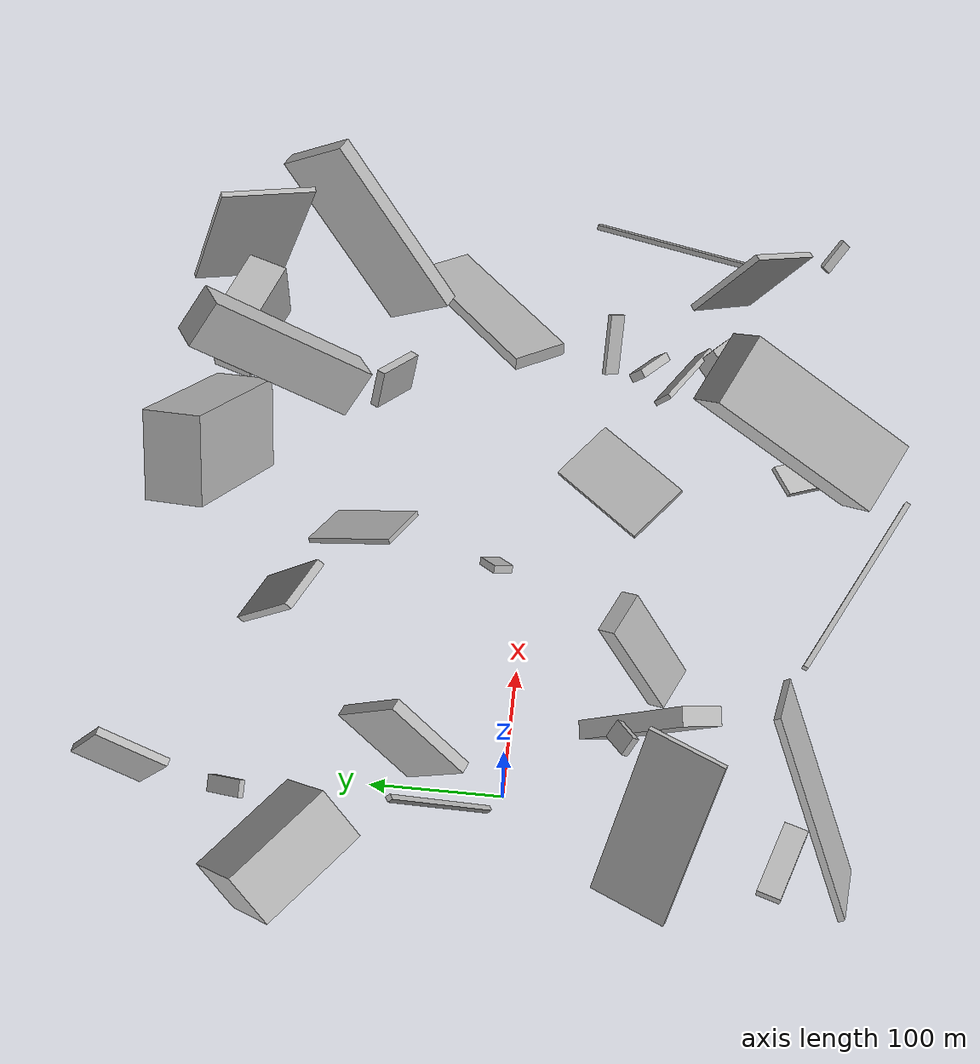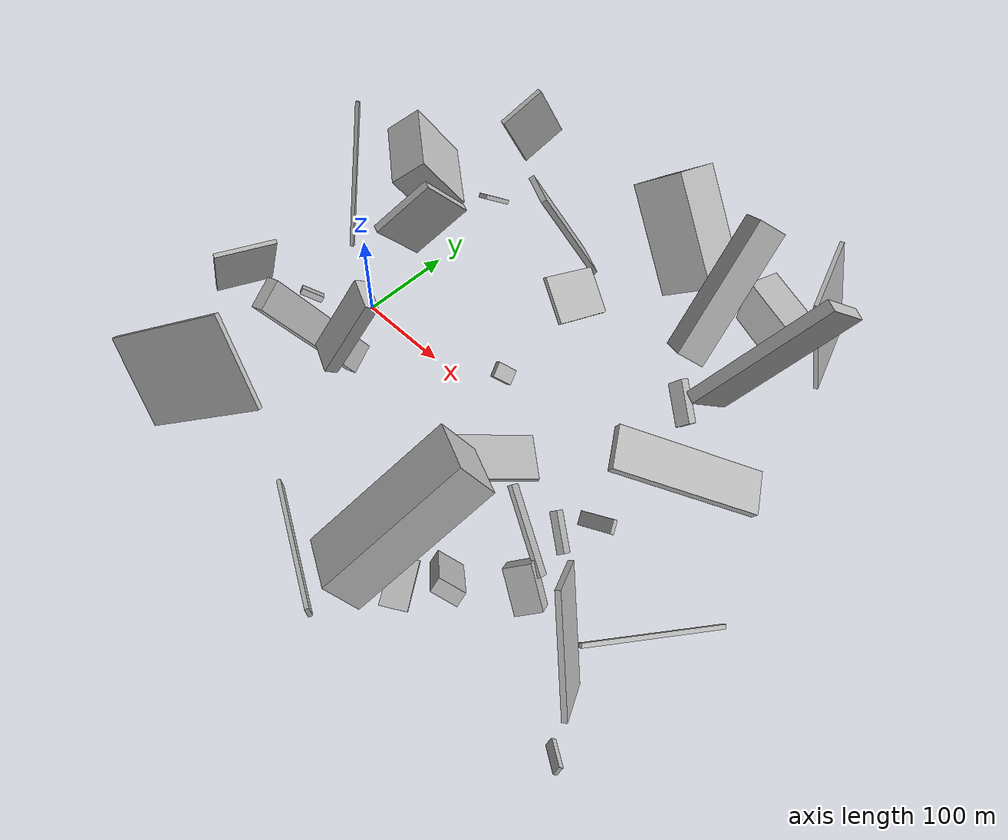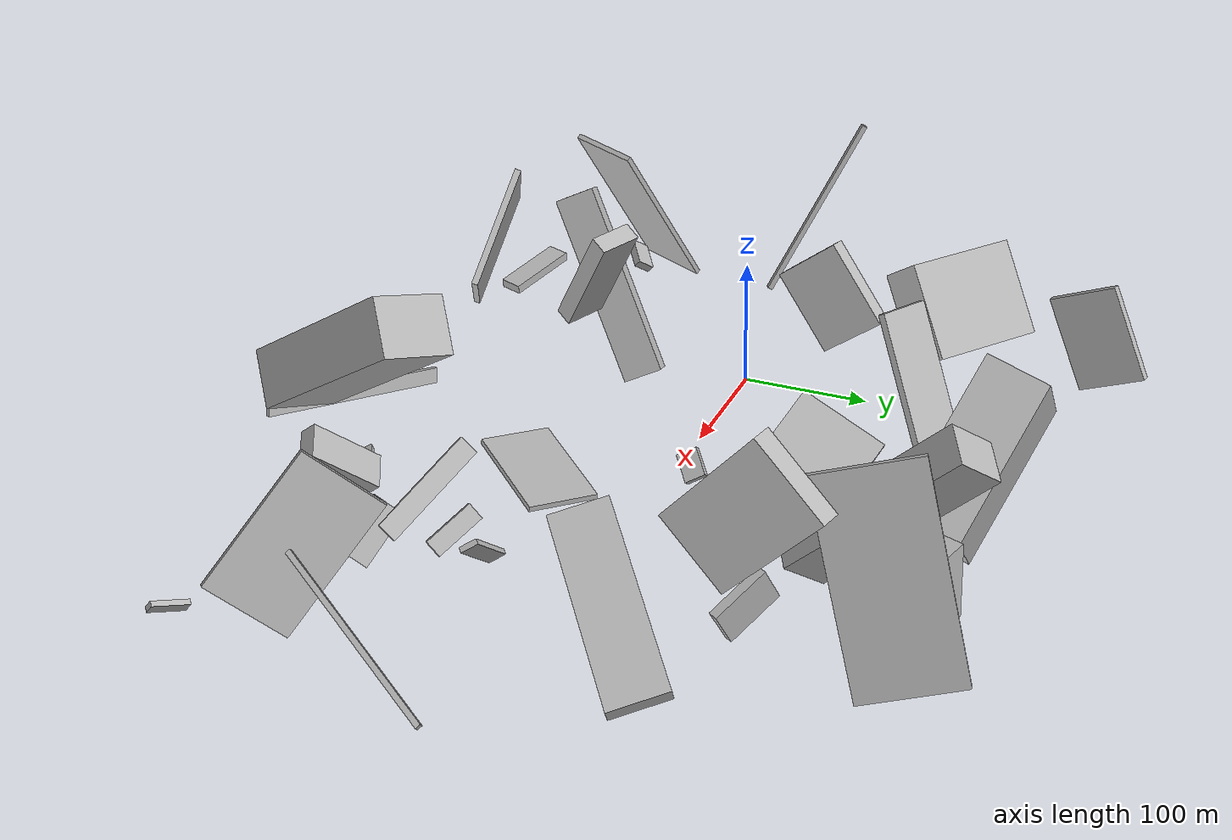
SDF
<sdf version="1.6">
 <world name="default">
  <scene>
   <sky><clouds><speed>12</speed></clouds></sky>
   <ambient>0.4 0.4 0.4 1</ambient>
   <background>0.7 0.7 0.7 1</background>
   <shadows>1</shadows>
  </scene>
  <gravity>0 0 -9.8066</gravity>
  <magnetic_field>6e-06 2.3e-05 -4.2e-05</magnetic_field>
  <physics default="0" name="default_physics" type="ode">
   <ode>
    <solver>
     <type>quick</type>
     <iters>10</iters>
     <sor>1.0</sor>
     <use_dynamic_moi_rescaling>0</use_dynamic_moi_rescaling>
    </solver>
    <constraints>
     <cfm>0</cfm>
     <erp>0.2</erp>
     <contact_max_correcting_vel>100</contact_max_correcting_vel>
     <contact_surface_layer>0.001</contact_surface_layer>
    </constraints>
   </ode>
   <max_step_size>0.004</max_step_size>
   <real_time_factor>1</real_time_factor>
   <real_time_update_rate>250</real_time_update_rate>
  </physics>
  <light name="sun" type="directional">
   <pose>0 0 10 0 0 0</pose>
   <diffuse>0.8 0.8 0.8 1</diffuse>
   <specular>0.2 0.2 0.2 1</specular>
   <attenuation>
    <range>1000</range>
    <constant>0.9</constant>
    <linear>0.01</linear>
    <quadratic>0.001</quadratic>
   </attenuation>
   <direction>-0.5 0.1 -0.9</direction>
  </light>
  <model name="building_1">
   <static>0</static>
   <pose>382.97855071428677 48.96650339826215 42.24662056464047 0.4046726126523059 -0.23914853380626852 2.151446105150315</pose>
   <link name="link">
    <gravity>0</gravity>
    <pose>0 0 5.0 0 0 0</pose>
    <collision name="collision"><geometry><box><size>43 150 10</size></box></geometry></collision>
    <visual name="visual">
     <cast_shadows>0</cast_shadows>
     <geometry><box><size>43 150 10</size></box></geometry>
     <material>
      <script>
       <uri>model://HANNAS_wall/materials/scripts</uri>
       <uri>model://HANNAS_wall/materials/textures</uri>
       <name>vrc/HANNAS_wall</name>
      </script>
     </material>
    </visual>
   </link>
  </model>
  <model name="building_2">
   <static>0</static>
   <pose>-42.38986210655219 -203.3637501750073 37.58928972525202 0.1548480259389098 0.04560364420245531 1.2608121076946412</pose>
   <link name="link">
    <gravity>0</gravity>
    <pose>0 0 3.5 0 0 0</pose>
    <collision name="collision"><geometry><box><size>18 59 7</size></box></geometry></collision>
    <visual name="visual">
     <cast_shadows>0</cast_shadows>
     <geometry><box><size>18 59 7</size></box></geometry>
     <material>
      <script>
       <uri>model://HANNAS_wall/materials/scripts</uri>
       <uri>model://HANNAS_wall/materials/textures</uri>
       <name>vrc/HANNAS_wall</name>
      </script>
     </material>
    </visual>
   </link>
  </model>
  <model name="building_3">
   <static>0</static>
   <pose>420.2145554065494 -156.04231306272914 64.22051684255842 1.2788094865591075 -0.8196249143374366 2.4426446708585114</pose>
   <link name="link">
    <gravity>0</gravity>
    <pose>0 0 2.5 0 0 0</pose>
    <collision name="collision"><geometry><box><size>109 67 5</size></box></geometry></collision>
    <visual name="visual">
     <cast_shadows>0</cast_shadows>
     <geometry><box><size>109 67 5</size></box></geometry>
     <material>
      <script>
       <uri>model://HANNAS_wall/materials/scripts</uri>
       <uri>model://HANNAS_wall/materials/textures</uri>
       <name>vrc/HANNAS_wall</name>
      </script>
     </material>
    </visual>
   </link>
  </model>
  <model name="building_4">
   <static>0</static>
   <pose>197.82779723151782 115.38548222090367 51.29437073958729 0.928441828095464 -0.4024173463903717 -1.68654877620383</pose>
   <link name="link">
    <gravity>0</gravity>
    <pose>0 0 24.5 0 0 0</pose>
    <collision name="collision"><geometry><box><size>68 4 49</size></box></geometry></collision>
    <visual name="visual">
     <cast_shadows>0</cast_shadows>
     <geometry><box><size>68 4 49</size></box></geometry>
     <material>
      <script>
       <uri>model://HANNAS_wall/materials/scripts</uri>
       <uri>model://HANNAS_wall/materials/textures</uri>
       <name>vrc/HANNAS_wall</name>
      </script>
     </material>
    </visual>
   </link>
  </model>
  <model name="building_5">
   <static>0</static>
   <pose>-39.78894149447774 124.58844574906283 59.9144864408237 1.5540339851808749 -0.9684049657398703 -2.232435980658327</pose>
   <link name="link">
    <gravity>0</gravity>
    <pose>0 0 44.5 0 0 0</pose>
    <collision name="collision"><geometry><box><size>76 43 89</size></box></geometry></collision>
    <visual name="visual">
     <cast_shadows>0</cast_shadows>
     <geometry><box><size>76 43 89</size></box></geometry>
     <material>
      <script>
       <uri>model://HANNAS_wall/materials/scripts</uri>
       <uri>model://HANNAS_wall/materials/textures</uri>
       <name>vrc/HANNAS_wall</name>
      </script>
     </material>
    </visual>
   </link>
  </model>
  <model name="building_6">
   <static>0</static>
   <pose>2.324256838699202 73.58416418486047 90.06967803559402 1.701395388449384 -0.6768035708357232 1.1046441245887166</pose>
   <link name="link">
    <gravity>0</gravity>
    <pose>0 0 4.5 0 0 0</pose>
    <collision name="collision"><geometry><box><size>73 69 9</size></box></geometry></collision>
    <visual name="visual">
     <cast_shadows>0</cast_shadows>
     <geometry><box><size>73 69 9</size></box></geometry>
     <material>
      <script>
       <uri>model://HANNAS_wall/materials/scripts</uri>
       <uri>model://HANNAS_wall/materials/textures</uri>
       <name>vrc/HANNAS_wall</name>
      </script>
     </material>
    </visual>
   </link>
  </model>
  <model name="building_7">
   <static>0</static>
   <pose>279.8994361788923 -184.84160714571235 103.94350794837996 0.6055428153936476 -0.2847947138466479 -0.4763811799558666</pose>
   <link name="link">
    <gravity>0</gravity>
    <pose>0 0 21.5 0 0 0</pose>
    <collision name="collision"><geometry><box><size>57 150 43</size></box></geometry></collision>
    <visual name="visual">
     <cast_shadows>0</cast_shadows>
     <geometry><box><size>57 150 43</size></box></geometry>
     <material>
      <script>
       <uri>model://HANNAS_wall/materials/scripts</uri>
       <uri>model://HANNAS_wall/materials/textures</uri>
       <name>vrc/HANNAS_wall</name>
      </script>
     </material>
    </visual>
   </link>
  </model>
  <model name="building_8">
   <static>0</static>
   <pose>343.5493935310847 233.0094188869003 43.85970317475254 -0.08185289037687331 -0.020794994385806433 -1.893373119146206</pose>
   <link name="link">
    <gravity>0</gravity>
    <pose>0 0 28.5 0 0 0</pose>
    <collision name="collision"><geometry><box><size>31 70 57</size></box></geometry></collision>
    <visual name="visual">
     <cast_shadows>0</cast_shadows>
     <geometry><box><size>31 70 57</size></box></geometry>
     <material>
      <script>
       <uri>model://HANNAS_wall/materials/scripts</uri>
       <uri>model://HANNAS_wall/materials/textures</uri>
       <name>vrc/HANNAS_wall</name>
      </script>
     </material>
    </visual>
   </link>
  </model>
  <model name="building_9">
   <static>0</static>
   <pose>197.04900876671934 239.62687570778925 80.51535043608698 0.3454529315720057 -0.7623062888670823 2.739572068182131</pose>
   <link name="link">
    <gravity>0</gravity>
    <pose>0 0 34.0 0 0 0</pose>
    <collision name="collision"><geometry><box><size>118 46 68</size></box></geometry></collision>
    <visual name="visual">
     <cast_shadows>0</cast_shadows>
     <geometry><box><size>118 46 68</size></box></geometry>
     <material>
      <script>
       <uri>model://HANNAS_wall/materials/scripts</uri>
       <uri>model://HANNAS_wall/materials/textures</uri>
       <name>vrc/HANNAS_wall</name>
      </script>
     </material>
    </visual>
   </link>
  </model>
  <model name="building_10">
   <static>0</static>
   <pose>372.9322394715548 -143.65427977450142 26.809199076286607 0.5019463456426678 -0.7197527134820253 -1.1464628383629643</pose>
   <link name="link">
    <gravity>0</gravity>
    <pose>0 0 21.5 0 0 0</pose>
    <collision name="collision"><geometry><box><size>18 26 43</size></box></geometry></collision>
    <visual name="visual">
     <cast_shadows>0</cast_shadows>
     <geometry><box><size>18 26 43</size></box></geometry>
     <material>
      <script>
       <uri>model://HANNAS_wall/materials/scripts</uri>
       <uri>model://HANNAS_wall/materials/textures</uri>
       <name>vrc/HANNAS_wall</name>
      </script>
     </material>
    </visual>
   </link>
  </model>
  <model name="building_11">
   <static>0</static>
   <pose>463.17653895455777 -90.57122519549988 35.783382462304616 -0.6148504941302979 -0.4019582868010668 -2.0429437976389817</pose>
   <link name="link">
    <gravity>0</gravity>
    <pose>0 0 2.0 0 0 0</pose>
    <collision name="collision"><geometry><box><size>150 4 4</size></box></geometry></collision>
    <visual name="visual">
     <cast_shadows>0</cast_shadows>
     <geometry><box><size>150 4 4</size></box></geometry>
     <material>
      <script>
       <uri>model://HANNAS_wall/materials/scripts</uri>
       <uri>model://HANNAS_wall/materials/textures</uri>
       <name>vrc/HANNAS_wall</name>
      </script>
     </material>
    </visual>
   </link>
  </model>
  <model name="building_12">
   <static>0</static>
   <pose>286.5431838198473 212.1316874680561 93.35430273899168 0.66378327557568 -0.7361748196797594 1.6245181027523419</pose>
   <link name="link">
    <gravity>0</gravity>
    <pose>0 0 19.5 0 0 0</pose>
    <collision name="collision"><geometry><box><size>147 29 39</size></box></geometry></collision>
    <visual name="visual">
     <cast_shadows>0</cast_shadows>
     <geometry><box><size>147 29 39</size></box></geometry>
     <material>
      <script>
       <uri>model://HANNAS_wall/materials/scripts</uri>
       <uri>model://HANNAS_wall/materials/textures</uri>
       <name>vrc/HANNAS_wall</name>
      </script>
     </material>
    </visual>
   </link>
  </model>
  <model name="building_13">
   <static>0</static>
   <pose>360.48613900346163 99.17143353920538 85.06141275723098 0.7427220102230511 -0.21564708441179647 2.737766734663955</pose>
   <link name="link">
    <gravity>0</gravity>
    <pose>0 0 75.0 0 0 0</pose>
    <collision name="collision"><geometry><box><size>12 63 150</size></box></geometry></collision>
    <visual name="visual">
     <cast_shadows>0</cast_shadows>
     <geometry><box><size>12 63 150</size></box></geometry>
     <material>
      <script>
       <uri>model://HANNAS_wall/materials/scripts</uri>
       <uri>model://HANNAS_wall/materials/textures</uri>
       <name>vrc/HANNAS_wall</name>
      </script>
     </material>
    </visual>
   </link>
  </model>
  <model name="building_14">
   <static>0</static>
   <pose>359.6996831582907 -89.16478906789901 38.526839046975 0.7965164888336267 -0.8194197580569804 -1.5472655481275135</pose>
   <link name="link">
    <gravity>0</gravity>
    <pose>0 0 19.0 0 0 0</pose>
    <collision name="collision"><geometry><box><size>13 7 38</size></box></geometry></collision>
    <visual name="visual">
     <cast_shadows>0</cast_shadows>
     <geometry><box><size>13 7 38</size></box></geometry>
     <material>
      <script>
       <uri>model://HANNAS_wall/materials/scripts</uri>
       <uri>model://HANNAS_wall/materials/textures</uri>
       <name>vrc/HANNAS_wall</name>
      </script>
     </material>
    </visual>
   </link>
  </model>
  <model name="building_15">
   <static>0</static>
   <pose>273.3722418582106 -33.32286906513091 36.79140818694353 -0.6494379472707478 -1.4074455501433438 1.5178055268287098</pose>
   <link name="link">
    <gravity>0</gravity>
    <pose>0 0 41.5 0 0 0</pose>
    <collision name="collision"><geometry><box><size>4 52 83</size></box></geometry></collision>
    <visual name="visual">
     <cast_shadows>0</cast_shadows>
     <geometry><box><size>4 52 83</size></box></geometry>
     <material>
      <script>
       <uri>model://HANNAS_wall/materials/scripts</uri>
       <uri>model://HANNAS_wall/materials/textures</uri>
       <name>vrc/HANNAS_wall</name>
      </script>
     </material>
    </visual>
   </link>
  </model>
  <model name="building_16">
   <static>0</static>
   <pose>-32.12403143448748 7.529275166896202 67.5773339258898 0.02810972338821336 -0.5064923332536297 -1.0234555467373243</pose>
   <link name="link">
    <gravity>0</gravity>
    <pose>0 0 75.0 0 0 0</pose>
    <collision name="collision"><geometry><box><size>4 4 150</size></box></geometry></collision>
    <visual name="visual">
     <cast_shadows>0</cast_shadows>
     <geometry><box><size>4 4 150</size></box></geometry>
     <material>
      <script>
       <uri>model://HANNAS_wall/materials/scripts</uri>
       <uri>model://HANNAS_wall/materials/textures</uri>
       <name>vrc/HANNAS_wall</name>
      </script>
     </material>
    </visual>
   </link>
  </model>
  <model name="building_17">
   <static>0</static>
   <pose>329.4906986739783 -107.48893117806975 64.03704720537242 0.9782637136152412 -0.49817010174288645 2.7031626215871993</pose>
   <link name="link">
    <gravity>0</gravity>
    <pose>0 0 2.0 0 0 0</pose>
    <collision name="collision"><geometry><box><size>82 15 4</size></box></geometry></collision>
    <visual name="visual">
     <cast_shadows>0</cast_shadows>
     <geometry><box><size>82 15 4</size></box></geometry>
     <material>
      <script>
       <uri>model://HANNAS_wall/materials/scripts</uri>
       <uri>model://HANNAS_wall/materials/textures</uri>
       <name>vrc/HANNAS_wall</name>
      </script>
     </material>
    </visual>
   </link>
  </model>
  <model name="building_18">
   <static>0</static>
   <pose>312.58603420408485 -189.33284973678647 55.56380169694155 -0.6196153091937973 -0.6989418052737548 -0.7080108010507561</pose>
   <link name="link">
    <gravity>0</gravity>
    <pose>0 0 7.0 0 0 0</pose>
    <collision name="collision"><geometry><box><size>59 26 14</size></box></geometry></collision>
    <visual name="visual">
     <cast_shadows>0</cast_shadows>
     <geometry><box><size>59 26 14</size></box></geometry>
     <material>
      <script>
       <uri>model://HANNAS_wall/materials/scripts</uri>
       <uri>model://HANNAS_wall/materials/textures</uri>
       <name>vrc/HANNAS_wall</name>
      </script>
     </material>
    </visual>
   </link>
  </model>
  <model name="building_19">
   <static>0</static>
   <pose>113.17560511192109 174.0494198455721 77.65979905941843 1.0918667713660781 0.05469897722668464 2.6522189651881085</pose>
   <link name="link">
    <gravity>0</gravity>
    <pose>0 0 3.0 0 0 0</pose>
    <collision name="collision"><geometry><box><size>40 134 6</size></box></geometry></collision>
    <visual name="visual">
     <cast_shadows>0</cast_shadows>
     <geometry><box><size>40 134 6</size></box></geometry>
     <material>
      <script>
       <uri>model://HANNAS_wall/materials/scripts</uri>
       <uri>model://HANNAS_wall/materials/textures</uri>
       <name>vrc/HANNAS_wall</name>
      </script>
     </material>
    </visual>
   </link>
  </model>
  <model name="building_20">
   <static>0</static>
   <pose>-46.983769465601895 -111.0125204761504 111.2120793906127 -0.07058870752247369 -1.0031870371483995 -0.35997568258440593</pose>
   <link name="link">
    <gravity>0</gravity>
    <pose>0 0 2.0 0 0 0</pose>
    <collision name="collision"><geometry><box><size>150 58 4</size></box></geometry></collision>
    <visual name="visual">
     <cast_shadows>0</cast_shadows>
     <geometry><box><size>150 58 4</size></box></geometry>
     <material>
      <script>
       <uri>model://HANNAS_wall/materials/scripts</uri>
       <uri>model://HANNAS_wall/materials/textures</uri>
       <name>vrc/HANNAS_wall</name>
      </script>
     </material>
    </visual>
   </link>
  </model>
  <model name="building_21">
   <static>0</static>
   <pose>283.98332365556394 -223.2823945686113 16.563972877968343 0.055993248527590134 1.1538294406816338 2.1632915711812255</pose>
   <link name="link">
    <gravity>0</gravity>
    <pose>0 0 22.5 0 0 0</pose>
    <collision name="collision"><geometry><box><size>4 26 45</size></box></geometry></collision>
    <visual name="visual">
     <cast_shadows>0</cast_shadows>
     <geometry><box><size>4 26 45</size></box></geometry>
     <material>
      <script>
       <uri>model://HANNAS_wall/materials/scripts</uri>
       <uri>model://HANNAS_wall/materials/textures</uri>
       <name>vrc/HANNAS_wall</name>
      </script>
     </material>
    </visual>
   </link>
  </model>
  <model name="building_22">
   <static>0</static>
   <pose>-16.795136458805466 205.0625516382854 15.973101220847585 -2.639519348947092 -0.6277671001233668 -1.8968380238913425</pose>
   <link name="link">
    <gravity>0</gravity>
    <pose>0 0 2.5 0 0 0</pose>
    <collision name="collision"><geometry><box><size>35 13 5</size></box></geometry></collision>
    <visual name="visual">
     <cast_shadows>0</cast_shadows>
     <geometry><box><size>35 13 5</size></box></geometry>
     <material>
      <script>
       <uri>model://HANNAS_wall/materials/scripts</uri>
       <uri>model://HANNAS_wall/materials/textures</uri>
       <name>vrc/HANNAS_wall</name>
      </script>
     </material>
    </visual>
   </link>
  </model>
  <model name="building_23">
   <static>0</static>
   <pose>472.71992090834306 -220.2848236262345 30.76514449182517 0.5049370922800519 0.8846274548699922 -1.7772217583194143</pose>
   <link name="link">
    <gravity>0</gravity>
    <pose>0 0 2.0 0 0 0</pose>
    <collision name="collision"><geometry><box><size>9 27 4</size></box></geometry></collision>
    <visual name="visual">
     <cast_shadows>0</cast_shadows>
     <geometry><box><size>9 27 4</size></box></geometry>
     <material>
      <script>
       <uri>model://HANNAS_wall/materials/scripts</uri>
       <uri>model://HANNAS_wall/materials/textures</uri>
       <name>vrc/HANNAS_wall</name>
      </script>
     </material>
    </visual>
   </link>
  </model>
  <model name="building_24">
   <static>0</static>
   <pose>31.326342078098513 -100.06844808089623 81.14974905290512 1.2402368741375327 -0.42122050873426276 1.8505287018451015</pose>
   <link name="link">
    <gravity>0</gravity>
    <pose>0 0 7.0 0 0 0</pose>
    <collision name="collision"><geometry><box><size>31 150 14</size></box></geometry></collision>
    <visual name="visual">
     <cast_shadows>0</cast_shadows>
     <geometry><box><size>31 150 14</size></box></geometry>
     <material>
      <script>
       <uri>model://HANNAS_wall/materials/scripts</uri>
       <uri>model://HANNAS_wall/materials/textures</uri>
       <name>vrc/HANNAS_wall</name>
      </script>
     </material>
    </visual>
   </link>
  </model>
  <model name="building_25">
   <static>0</static>
   <pose>69.99715372619833 -111.23496221488709 74.55527404839214 -0.04331692018348716 -0.5383803712058772 -1.9796190255936637</pose>
   <link name="link">
    <gravity>0</gravity>
    <pose>0 0 45.0 0 0 0</pose>
    <collision name="collision"><geometry><box><size>14 34 90</size></box></geometry></collision>
    <visual name="visual">
     <cast_shadows>0</cast_shadows>
     <geometry><box><size>14 34 90</size></box></geometry>
     <material>
      <script>
       <uri>model://HANNAS_wall/materials/scripts</uri>
       <uri>model://HANNAS_wall/materials/textures</uri>
       <name>vrc/HANNAS_wall</name>
      </script>
     </material>
    </visual>
   </link>
  </model>
  <model name="building_26">
   <static>0</static>
   <pose>-27.089641001683987 246.86880503633722 67.08314638131245 1.1322139810196237 0.0259436376049639 2.923994382156454</pose>
   <link name="link">
    <gravity>0</gravity>
    <pose>0 0 27.5 0 0 0</pose>
    <collision name="collision"><geometry><box><size>6 74 55</size></box></geometry></collision>
    <visual name="visual">
     <cast_shadows>0</cast_shadows>
     <geometry><box><size>6 74 55</size></box></geometry>
     <material>
      <script>
       <uri>model://HANNAS_wall/materials/scripts</uri>
       <uri>model://HANNAS_wall/materials/textures</uri>
       <name>vrc/HANNAS_wall</name>
      </script>
     </material>
    </visual>
   </link>
  </model>
  <model name="building_27">
   <static>0</static>
   <pose>116.90453910995669 -214.8035022261131 20.300869229630496 -1.4030593626929657 0.12635643216148734 -2.030891453402475</pose>
   <link name="link">
    <gravity>0</gravity>
    <pose>0 0 75.0 0 0 0</pose>
    <collision name="collision"><geometry><box><size>4 12 150</size></box></geometry></collision>
    <visual name="visual">
     <cast_shadows>0</cast_shadows>
     <geometry><box><size>4 12 150</size></box></geometry>
     <material>
      <script>
       <uri>model://HANNAS_wall/materials/scripts</uri>
       <uri>model://HANNAS_wall/materials/textures</uri>
       <name>vrc/HANNAS_wall</name>
      </script>
     </material>
    </visual>
   </link>
  </model>
  <model name="building_28">
   <static>0</static>
   <pose>12.879060621400445 -78.27197674281483 98.11881700753577 0.6583071416293579 -0.7789373119911818 1.71195279169788</pose>
   <link name="link">
    <gravity>0</gravity>
    <pose>0 0 7.5 0 0 0</pose>
    <collision name="collision"><geometry><box><size>6 22 15</size></box></geometry></collision>
    <visual name="visual">
     <cast_shadows>0</cast_shadows>
     <geometry><box><size>6 22 15</size></box></geometry>
     <material>
      <script>
       <uri>model://HANNAS_wall/materials/scripts</uri>
       <uri>model://HANNAS_wall/materials/textures</uri>
       <name>vrc/HANNAS_wall</name>
      </script>
     </material>
    </visual>
   </link>
  </model>
  <model name="building_29">
   <static>0</static>
   <pose>173.7287592760545 23.532195296017235 22.425309169160517 0.777701091290241 -0.4757817037504962 1.9115200274202853</pose>
   <link name="link">
    <gravity>0</gravity>
    <pose>0 0 3.0 0 0 0</pose>
    <collision name="collision"><geometry><box><size>16 22 6</size></box></geometry></collision>
    <visual name="visual">
     <cast_shadows>0</cast_shadows>
     <geometry><box><size>16 22 6</size></box></geometry>
     <material>
      <script>
       <uri>model://HANNAS_wall/materials/scripts</uri>
       <uri>model://HANNAS_wall/materials/textures</uri>
       <name>vrc/HANNAS_wall</name>
      </script>
     </material>
    </visual>
   </link>
  </model>
  <model name="building_30">
   <static>0</static>
   <pose>391.9808145579857 232.77506789228187 115.26757254543944 1.3983487772460323 -0.22431279820999783 1.8893372107139388</pose>
   <link name="link">
    <gravity>0</gravity>
    <pose>0 0 2.0 0 0 0</pose>
    <collision name="collision"><geometry><box><size>71 150 4</size></box></geometry></collision>
    <visual name="visual">
     <cast_shadows>0</cast_shadows>
     <geometry><box><size>71 150 4</size></box></geometry>
     <material>
      <script>
       <uri>model://HANNAS_wall/materials/scripts</uri>
       <uri>model://HANNAS_wall/materials/textures</uri>
       <name>vrc/HANNAS_wall</name>
      </script>
     </material>
    </visual>
   </link>
  </model>
  <model name="building_31">
   <static>0</static>
   <pose>-5.012347456516524 -221.40257037488146 83.46126601661419 2.1320860936639594 -0.8879844622941462 2.9401246899616744</pose>
   <link name="link">
    <gravity>0</gravity>
    <pose>0 0 2.5 0 0 0</pose>
    <collision name="collision"><geometry><box><size>96 150 5</size></box></geometry></collision>
    <visual name="visual">
     <cast_shadows>0</cast_shadows>
     <geometry><box><size>96 150 5</size></box></geometry>
     <material>
      <script>
       <uri>model://HANNAS_wall/materials/scripts</uri>
       <uri>model://HANNAS_wall/materials/textures</uri>
       <name>vrc/HANNAS_wall</name>
      </script>
     </material>
    </visual>
   </link>
  </model>
  <model name="building_32">
   <static>0</static>
   <pose>360.4533337334635 -44.86953689278417 51.96308795209327 -2.2224962313997985 -0.6345009985286553 -2.256778076991432</pose>
   <link name="link">
    <gravity>0</gravity>
    <pose>0 0 6.5 0 0 0</pose>
    <collision name="collision"><geometry><box><size>4 47 13</size></box></geometry></collision>
    <visual name="visual">
     <cast_shadows>0</cast_shadows>
     <geometry><box><size>4 47 13</size></box></geometry>
     <material>
      <script>
       <uri>model://HANNAS_wall/materials/scripts</uri>
       <uri>model://HANNAS_wall/materials/textures</uri>
       <name>vrc/HANNAS_wall</name>
      </script>
     </material>
    </visual>
   </link>
  </model>
  <model name="building_33">
   <static>0</static>
   <pose>328.4055938613986 122.50855942363218 26.096875182458106 1.3074365322970969 -1.0322706203453684 -0.3073443874471325</pose>
   <link name="link">
    <gravity>0</gravity>
    <pose>0 0 3.5 0 0 0</pose>
    <collision name="collision"><geometry><box><size>32 44 7</size></box></geometry></collision>
    <visual name="visual">
     <cast_shadows>0</cast_shadows>
     <geometry><box><size>32 44 7</size></box></geometry>
     <material>
      <script>
       <uri>model://HANNAS_wall/materials/scripts</uri>
       <uri>model://HANNAS_wall/materials/textures</uri>
       <name>vrc/HANNAS_wall</name>
      </script>
     </material>
    </visual>
   </link>
  </model>
 </world>
</sdf>
